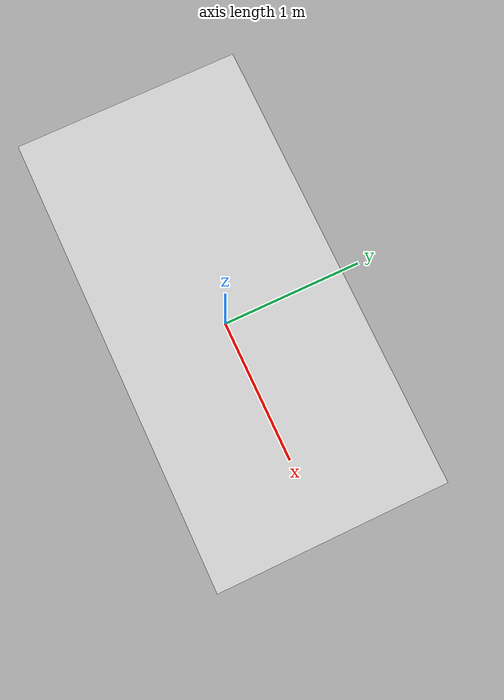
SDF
<?xml version="1.0" ?>
<sdf version="1.6">
  <model name="usv_boat">
    <static>false</static>

    <link name="hull">
      <pose>0 0 0.3 0 0 0</pose>
      <inertial>
        <mass>50</mass>
        <inertia>
          <ixx>8.33</ixx>
          <iyy>50</iyy>
          <izz>54.17</izz>
        </inertia>
      </inertial>

      <visual name="hull_visual">
        <geometry>
          <box>
            <size>3 1.5 0.5</size>
          </box>
        </geometry>
        <material>
          <ambient>0.8 0.8 0.8 1</ambient>
          <diffuse>0.8 0.8 0.8 1</diffuse>
        </material>
      </visual>

      <collision name="hull_collision">
        <geometry>
          <box>
            <size>3 1.5 0.5</size>
          </box>
        </geometry>
      </collision>

      <!-- IMU -->
      <sensor name="imu_sensor" type="imu">
        <always_on>true</always_on>
        <update_rate>50</update_rate>
        <plugin filename="libgazebo_ros_imu_sensor.so" name="imu_plugin">
          <robotNamespace>/usv</robotNamespace>
          <topicName>imu/data</topicName>
        </plugin>
      </sensor>

      <!-- GPS -->
      <sensor name="gps" type="gps">
        <always_on>true</always_on>
        <update_rate>10</update_rate>
        <plugin filename="libgazebo_ros_gps_sensor.so" name="gps_plugin">
          <robotNamespace>/usv</robotNamespace>
          <topicName>gps/fix</topicName>
        </plugin>
      </sensor>

      <!-- Camera -->
      <sensor name="camera" type="camera">
        <pose>1.5 0 0.3 0 0 0</pose>
        <camera>
          <horizontal_fov>1.047</horizontal_fov>
          <image>
            <width>1280</width>
            <height>720</height>
          </image>
        </camera>
        <always_on>true</always_on>
        <update_rate>30</update_rate>
        <plugin filename="libgazebo_ros_camera.so" name="camera_plugin">
          <robotNamespace>/usv</robotNamespace>
          <imageTopicName>camera/image_raw</imageTopicName>
        </plugin>
      </sensor>

      <!-- Lidar for obstacle detection -->
      <sensor name="lidar" type="ray">
        <pose>0 0 0.5 0 0 0</pose>
        <ray>
          <scan>
            <horizontal>
              <samples>360</samples>
              <resolution>1</resolution>
              <min_angle>-3.14159</min_angle>
              <max_angle>3.14159</max_angle>
            </horizontal>
          </scan>
          <range>
            <min>0.5</min>
            <max>100</max>
          </range>
        </ray>
        <always_on>true</always_on>
        <update_rate>10</update_rate>
        <plugin filename="libgazebo_ros_laser.so" name="lidar_plugin">
          <robotNamespace>/usv</robotNamespace>
          <topicName>scan</topicName>
          <frameName>lidar_link</frameName>
        </plugin>
      </sensor>

      <!-- Water Depth Sensor -->
      <sensor name="depth_sensor" type="ray">
        <pose>0 0 -0.25 0 1.57 0</pose>
        <ray>
          <scan>
            <horizontal>
              <samples>1</samples>
              <resolution>1</resolution>
              <min_angle>0</min_angle>
              <max_angle>0</max_angle>
            </horizontal>
          </scan>
          <range>
            <min>0.1</min>
            <max>50</max>
          </range>
        </ray>
        <always_on>true</always_on>
        <update_rate>10</update_rate>
        <plugin filename="libgazebo_ros_range.so" name="depth_plugin">
          <robotNamespace>/usv</robotNamespace>
          <topicName>water_depth</topicName>
          <radiation>ultrasound</radiation>
        </plugin>
      </sensor>
    </link>

    <!-- Left Thruster -->
    <link name="left_thruster">
      <pose>-1.4 0.5 0 0 0 0</pose>
    </link>
    <joint name="left_thruster_joint" type="continuous">
      <parent>hull</parent>
      <child>left_thruster</child>
      <axis>
        <xyz>0 0 1</xyz>
      </axis>
    </joint>

    <!-- Right Thruster -->
    <link name="right_thruster">
      <pose>-1.4 -0.5 0 0 0 0</pose>
    </link>
    <joint name="right_thruster_joint" type="continuous">
      <parent>hull</parent>
      <child>right_thruster</child>
      <axis>
        <xyz>0 0 1</xyz>
      </axis>
    </joint>

    <!-- Buoyancy Plugin -->
    <plugin filename="libgazebo_ros_buoyancy.so" name="buoyancy_plugin">
      <robotNamespace>/usv</robotNamespace>
      <waterLevel>0</waterLevel>
      <waterDensity>1000</waterDensity>
      <dragCoeff>0.5</dragCoeff>
      <buoyancy>
        <linkName>hull</linkName>
        <centerOfBuoyancy>0 0 -0.1</centerOfBuoyancy>
        <buoyantForce>490</buoyantForce>
      </buoyancy>
    </plugin>

    <!-- Thruster Plugin -->
    <plugin filename="libgazebo_ros_thruster.so" name="thruster_plugin">
      <robotNamespace>/usv</robotNamespace>
      <leftThrusterTopic>thrusters/left</leftThrusterTopic>
      <rightThrusterTopic>thrusters/right</rightThrusterTopic>
      <maxForce>100</maxForce>
    </plugin>
  </model>
</sdf>
